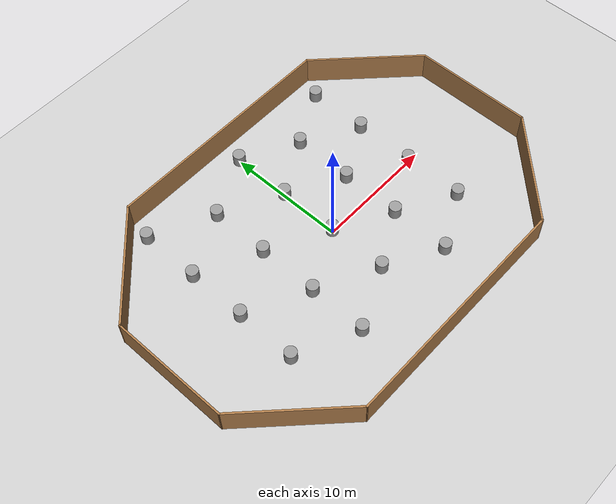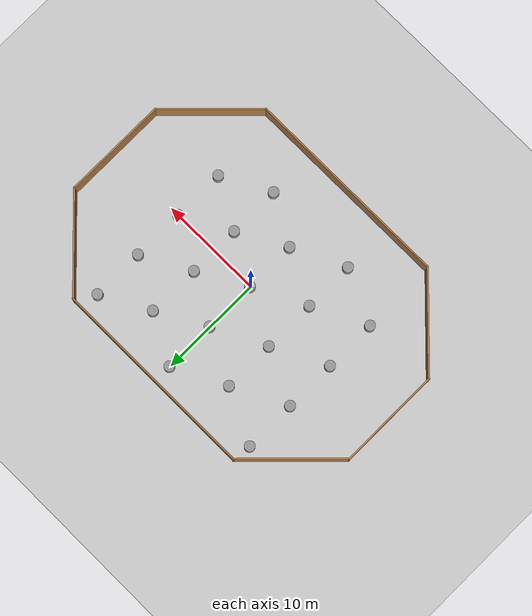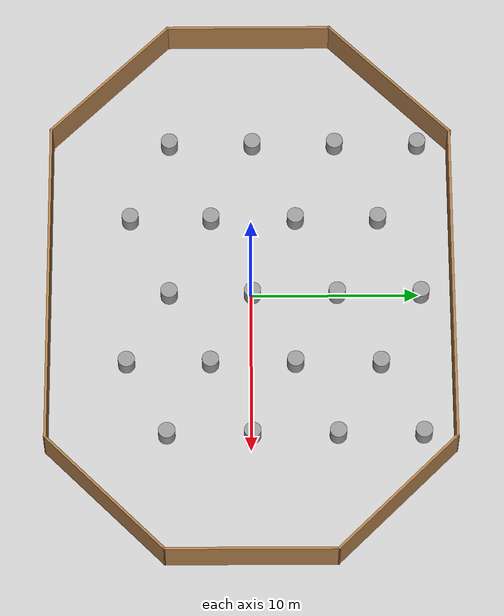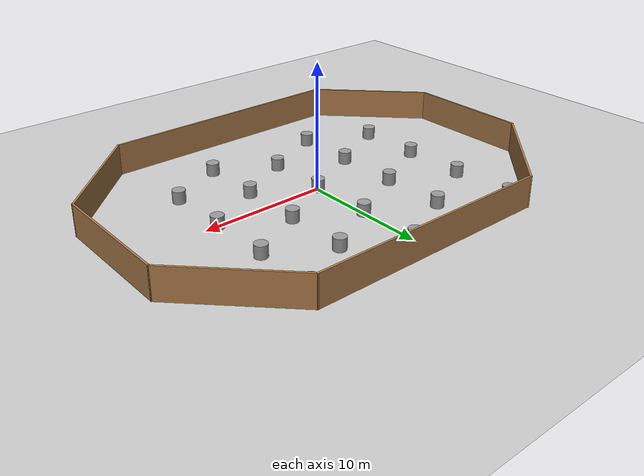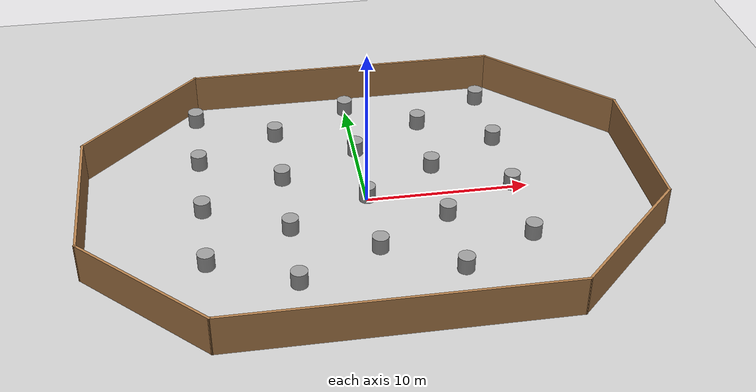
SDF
<sdf version="1.6">
 <world name="default">
  <light name="sun" type="directional">
   <pose>0 0 10 0 -0 0</pose>
   <diffuse>0.8 0.8 0.8 1</diffuse>
   <specular>0.2 0.2 0.2 1</specular>
   <attenuation>
    <range>1000</range>
    <constant>0.9</constant>
    <linear>0.01</linear>
    <quadratic>0.001</quadratic>
   </attenuation>
   <direction>-0.5 0.1 -0.9</direction>
  </light>
  <model name="ground_plane">
   <static>1</static>
   <link name="link">
    <collision name="collision">
     <geometry><plane><normal>0 0 1</normal><size>100 100</size></plane></geometry>
     <surface>
      <contact><collide_bitmask>65535</collide_bitmask></contact>
      <friction><ode><mu>100</mu><mu2>50</mu2></ode></friction>
     </surface>
    </collision>
    <visual name="visual">
     <cast_shadows>0</cast_shadows>
     <geometry><plane><normal>0 0 1</normal><size>100 100</size></plane></geometry>
     <material>
      <script><uri>file://media/materials/scripts/gazebo.material</uri><name>Gazebo/Grey</name></script>
     </material>
    </visual>
   </link>
  </model>
  <gravity>0 0 -9.8</gravity>
  <magnetic_field>6e-06 2.3e-05 -4.2e-05</magnetic_field>
  <atmosphere type="adiabatic"/>
  <physics name="default_physics" default="0" type="ode">
   <max_step_size>0.001</max_step_size>
   <real_time_factor>1</real_time_factor>
   <real_time_update_rate>1000</real_time_update_rate>
  </physics>
  <scene><ambient>0.4 0.4 0.4 1</ambient><background>0.7 0.7 0.7 1</background><shadows>1</shadows></scene>
  <audio><device>default</device></audio>
  <spherical_coordinates>
   <surface_model>EARTH_WGS84</surface_model>
   <latitude_deg>0</latitude_deg>
   <longitude_deg>0</longitude_deg>
   <elevation>0</elevation>
   <heading_deg>0</heading_deg>
  </spherical_coordinates>
  <model name="world">
   <pose>0.051675 -0.00023 0 0 -0 0</pose>
   <link name="Wall_12">
    <collision name="Wall_12_Collision">
     <geometry><box><size>20.15 0.15 2.5</size></box></geometry>
     <pose>0 0 1.25 0 -0 0</pose>
    </collision>
    <visual name="Wall_12_Visual">
     <pose>0 0 1.25 0 -0 0</pose>
     <geometry><box><size>20.15 0.15 2.5</size></box></geometry>
     <material>
      <script><uri>file://media/materials/scripts/gazebo.material</uri><name>Gazebo/Wood</name></script>
      <ambient>1 1 1 1</ambient>
     </material>
     <meta><layer>0</layer></meta>
    </visual>
    <pose>0 -11.9784 0 0 -0 0</pose>
   </link>
   <link name="Wall_19">
    <collision name="Wall_19_Collision">
     <geometry><box><size>10 0.15 2.5</size></box></geometry>
     <pose>0 0 1.25 0 -0 0</pose>
    </collision>
    <visual name="Wall_19_Visual">
     <pose>0 0 1.25 0 -0 0</pose>
     <geometry><box><size>10 0.15 2.5</size></box></geometry>
     <material>
      <script><uri>file://media/materials/scripts/gazebo.material</uri><name>Gazebo/Wood</name></script>
      <ambient>1 1 1 1</ambient>
     </material>
     <meta><layer>0</layer></meta>
    </visual>
    <pose>13.4825 -8.49594 0 0 -0 0.785398</pose>
   </link>
   <link name="Wall_21">
    <collision name="Wall_21_Collision">
     <geometry><box><size>10.15 0.15 2.5</size></box></geometry>
     <pose>0 0 1.25 0 -0 0</pose>
    </collision>
    <visual name="Wall_21_Visual">
     <pose>0 0 1.25 0 -0 0</pose>
     <geometry><box><size>10.15 0.15 2.5</size></box></geometry>
     <material>
      <script><uri>file://media/materials/scripts/gazebo.material</uri><name>Gazebo/Wood</name></script>
      <ambient>1 1 1 1</ambient>
     </material>
     <meta><layer>0</layer></meta>
    </visual>
    <pose>16.965 -0.013444 0 0 -0 1.5708</pose>
   </link>
   <link name="Wall_26">
    <collision name="Wall_26_Collision">
     <geometry><box><size>10 0.15 2.5</size></box></geometry>
     <pose>0 0 1.25 0 -0 0</pose>
    </collision>
    <visual name="Wall_26_Visual">
     <pose>0 0 1.25 0 -0 0</pose>
     <geometry><box><size>10 0.15 2.5</size></box></geometry>
     <material>
      <script><uri>file://media/materials/scripts/gazebo.material</uri><name>Gazebo/Wood</name></script>
      <ambient>1 1 1 1</ambient>
     </material>
     <meta><layer>0</layer></meta>
    </visual>
    <pose>13.4825 8.46906 0 0 -0 2.35619</pose>
   </link>
   <link name="Wall_30">
    <collision name="Wall_30_Collision">
     <geometry><box><size>20 0.15 2.5</size></box></geometry>
     <pose>0 0 1.25 0 -0 0</pose>
    </collision>
    <visual name="Wall_30_Visual">
     <pose>0 0 1.25 0 -0 0</pose>
     <geometry><box><size>20 0.15 2.5</size></box></geometry>
     <material>
      <script><uri>file://media/materials/scripts/gazebo.material</uri><name>Gazebo/Wood</name></script>
      <ambient>1 1 1 1</ambient>
     </material>
     <meta><layer>0</layer></meta>
    </visual>
    <pose>0.075 11.9516 0 0 -0 3.14159</pose>
   </link>
   <link name="Wall_32">
    <collision name="Wall_32_Collision">
     <geometry><box><size>10 0.15 2.5</size></box></geometry>
     <pose>0 0 1.25 0 -0 0</pose>
    </collision>
    <visual name="Wall_32_Visual">
     <pose>0 0 1.25 0 -0 0</pose>
     <geometry><box><size>10 0.15 2.5</size></box></geometry>
     <material>
      <script><uri>file://media/materials/scripts/gazebo.material</uri><name>Gazebo/Wood</name></script>
      <ambient>1 1 1 1</ambient>
     </material>
     <meta><layer>0</layer></meta>
    </visual>
    <pose>-13.4825 -8.49594 0 0 -0 2.35619</pose>
   </link>
   <link name="Wall_34">
    <collision name="Wall_34_Collision">
     <geometry><box><size>10 0.15 2.5</size></box></geometry>
     <pose>0 0 1.25 0 -0 0</pose>
    </collision>
    <visual name="Wall_34_Visual">
     <pose>0 0 1.25 0 -0 0</pose>
     <geometry><box><size>10 0.15 2.5</size></box></geometry>
     <material>
      <script><uri>file://media/materials/scripts/gazebo.material</uri><name>Gazebo/Wood</name></script>
      <ambient>1 1 1 1</ambient>
     </material>
     <meta><layer>0</layer></meta>
    </visual>
    <pose>-16.965 -0.088444 0 0 -0 1.5708</pose>
   </link>
   <link name="Wall_36">
    <collision name="Wall_36_Collision">
     <geometry><box><size>10.25 0.15 2.5</size></box></geometry>
     <pose>0 0 1.25 0 -0 0</pose>
    </collision>
    <visual name="Wall_36_Visual">
     <pose>0 0 1.25 0 -0 0</pose>
     <geometry><box><size>10.25 0.15 2.5</size></box></geometry>
     <material>
      <script><uri>file://media/materials/scripts/gazebo.material</uri><name>Gazebo/Wood</name></script>
      <ambient>1 1 1 1</ambient>
     </material>
     <meta><layer>0</layer></meta>
    </visual>
    <pose>-13.394 8.40756 0 0 -0 0.785398</pose>
   </link>
   <static>1</static>
  </model>
  <model name="models">
   <link name="link_0_clone">
    <inertial>
     <mass>1</mass>
     <inertia><ixx>0.145833</ixx><ixy>0</ixy><ixz>0</ixz><iyy>0.145833</iyy><iyz>0</iyz><izz>0.125</izz></inertia>
    </inertial>
    <pose>9.32799 4.96395 0 0 -0 0</pose>
    <visual name="visual">
     <geometry><cylinder><radius>0.5</radius><length>1</length></cylinder></geometry>
     <material>
      <lighting>1</lighting>
      <script><uri>file://media/materials/scripts/gazebo.material</uri><name>Gazebo/Grey</name></script>
      <ambient>1 1 1 1</ambient>
      <shader type="vertex"><normal_map>__default__</normal_map></shader>
      <diffuse>0.7 0.7 0.7 1</diffuse>
      <specular>0.01 0.01 0.01 1</specular>
      <emissive>0 0 0 1</emissive>
     </material>
    </visual>
    <collision name="collision">
     <geometry><cylinder><radius>0.5</radius><length>1</length></cylinder></geometry>
     <surface>
      <friction>
       <ode><mu>1</mu><mu2>1</mu2><fdir1>0 0 0</fdir1><slip1>0</slip1><slip2>0</slip2></ode>
       <torsional>
        <coefficient>1</coefficient>
        <patch_radius>0</patch_radius>
        <surface_radius>0</surface_radius>
        <use_patch_radius>1</use_patch_radius>
        <ode><slip>0</slip></ode>
       </torsional>
      </friction>
      <bounce><restitution_coefficient>0</restitution_coefficient><threshold>1e+06</threshold></bounce>
      <contact>
       <collide_without_contact>0</collide_without_contact>
       <collide_without_contact_bitmask>1</collide_without_contact_bitmask>
       <collide_bitmask>1</collide_bitmask>
       <ode>
        <soft_cfm>0</soft_cfm>
        <soft_erp>0.2</soft_erp>
        <kp>1e+13</kp>
        <kd>1</kd>
        <max_vel>0.01</max_vel>
        <min_depth>0</min_depth>
       </ode>
       <bullet>
        <split_impulse>1</split_impulse>
        <split_impulse_penetration_threshold>-0.01</split_impulse_penetration_threshold>
        <soft_cfm>0</soft_cfm>
        <soft_erp>0.2</soft_erp>
        <kp>1e+13</kp>
        <kd>1</kd>
       </bullet>
      </contact>
     </surface>
    </collision>
   </link>
   <link name="link_0_clone_0">
    <inertial>
     <mass>1</mass>
     <inertia><ixx>0.145833</ixx><ixy>0</ixy><ixz>0</ixz><iyy>0.145833</iyy><iyz>0</iyz><izz>0.125</izz></inertia>
    </inertial>
    <pose>9.32799 9.97932 -0 0 -0 0</pose>
    <visual name="visual">
     <geometry><cylinder><radius>0.5</radius><length>1</length></cylinder></geometry>
     <material>
      <lighting>1</lighting>
      <script><uri>file://media/materials/scripts/gazebo.material</uri><name>Gazebo/Grey</name></script>
      <ambient>1 1 1 1</ambient>
      <shader type="vertex"><normal_map>__default__</normal_map></shader>
      <diffuse>0.7 0.7 0.7 1</diffuse>
      <specular>0.01 0.01 0.01 1</specular>
      <emissive>0 0 0 1</emissive>
     </material>
    </visual>
    <collision name="collision">
     <geometry><cylinder><radius>0.5</radius><length>1</length></cylinder></geometry>
     <surface>
      <friction>
       <ode><mu>1</mu><mu2>1</mu2><fdir1>0 0 0</fdir1><slip1>0</slip1><slip2>0</slip2></ode>
       <torsional>
        <coefficient>1</coefficient>
        <patch_radius>0</patch_radius>
        <surface_radius>0</surface_radius>
        <use_patch_radius>1</use_patch_radius>
        <ode><slip>0</slip></ode>
       </torsional>
      </friction>
      <bounce><restitution_coefficient>0</restitution_coefficient><threshold>1e+06</threshold></bounce>
      <contact>
       <collide_without_contact>0</collide_without_contact>
       <collide_without_contact_bitmask>1</collide_without_contact_bitmask>
       <collide_bitmask>1</collide_bitmask>
       <ode>
        <soft_cfm>0</soft_cfm>
        <soft_erp>0.2</soft_erp>
        <kp>1e+13</kp>
        <kd>1</kd>
        <max_vel>0.01</max_vel>
        <min_depth>0</min_depth>
       </ode>
       <bullet>
        <split_impulse>1</split_impulse>
        <split_impulse_penetration_threshold>-0.01</split_impulse_penetration_threshold>
        <soft_cfm>0</soft_cfm>
        <soft_erp>0.2</soft_erp>
        <kp>1e+13</kp>
        <kd>1</kd>
       </bullet>
      </contact>
     </surface>
    </collision>
   </link>
   <link name="link_0_clone_10">
    <inertial>
     <mass>1</mass>
     <inertia><ixx>0.145833</ixx><ixy>0</ixy><ixz>0</ixz><iyy>0.145833</iyy><iyz>0</iyz><izz>0.125</izz></inertia>
    </inertial>
    <pose>-4.63785 7.51834 -0 0 -0 0</pose>
    <visual name="visual">
     <geometry><cylinder><radius>0.5</radius><length>1</length></cylinder></geometry>
     <material>
      <lighting>1</lighting>
      <script><uri>file://media/materials/scripts/gazebo.material</uri><name>Gazebo/Grey</name></script>
      <ambient>1 1 1 1</ambient>
      <shader type="vertex"><normal_map>__default__</normal_map></shader>
      <diffuse>0.7 0.7 0.7 1</diffuse>
      <specular>0.01 0.01 0.01 1</specular>
      <emissive>0 0 0 1</emissive>
     </material>
    </visual>
    <collision name="collision">
     <geometry><cylinder><radius>0.5</radius><length>1</length></cylinder></geometry>
     <surface>
      <friction>
       <ode><mu>1</mu><mu2>1</mu2><fdir1>0 0 0</fdir1><slip1>0</slip1><slip2>0</slip2></ode>
       <torsional>
        <coefficient>1</coefficient>
        <patch_radius>0</patch_radius>
        <surface_radius>0</surface_radius>
        <use_patch_radius>1</use_patch_radius>
        <ode><slip>0</slip></ode>
       </torsional>
      </friction>
      <bounce><restitution_coefficient>0</restitution_coefficient><threshold>1e+06</threshold></bounce>
      <contact>
       <collide_without_contact>0</collide_without_contact>
       <collide_without_contact_bitmask>1</collide_without_contact_bitmask>
       <collide_bitmask>1</collide_bitmask>
       <ode>
        <soft_cfm>0</soft_cfm>
        <soft_erp>0.2</soft_erp>
        <kp>1e+13</kp>
        <kd>1</kd>
        <max_vel>0.01</max_vel>
        <min_depth>0</min_depth>
       </ode>
       <bullet>
        <split_impulse>1</split_impulse>
        <split_impulse_penetration_threshold>-0.01</split_impulse_penetration_threshold>
        <soft_cfm>0</soft_cfm>
        <soft_erp>0.2</soft_erp>
        <kp>1e+13</kp>
        <kd>1</kd>
       </bullet>
      </contact>
     </surface>
    </collision>
   </link>
   <link name="link_0_clone_11">
    <inertial>
     <mass>1</mass>
     <inertia><ixx>0.145833</ixx><ixy>0</ixy><ixz>0</ixz><iyy>0.145833</iyy><iyz>0</iyz><izz>0.125</izz></inertia>
    </inertial>
    <pose>-4.63785 2.56655 -0 0 -0 0</pose>
    <visual name="visual">
     <geometry><cylinder><radius>0.5</radius><length>1</length></cylinder></geometry>
     <material>
      <lighting>1</lighting>
      <script><uri>file://media/materials/scripts/gazebo.material</uri><name>Gazebo/Grey</name></script>
      <ambient>1 1 1 1</ambient>
      <shader type="vertex"><normal_map>__default__</normal_map></shader>
      <diffuse>0.7 0.7 0.7 1</diffuse>
      <specular>0.01 0.01 0.01 1</specular>
      <emissive>0 0 0 1</emissive>
     </material>
    </visual>
    <collision name="collision">
     <geometry><cylinder><radius>0.5</radius><length>1</length></cylinder></geometry>
     <surface>
      <friction>
       <ode><mu>1</mu><mu2>1</mu2><fdir1>0 0 0</fdir1><slip1>0</slip1><slip2>0</slip2></ode>
       <torsional>
        <coefficient>1</coefficient>
        <patch_radius>0</patch_radius>
        <surface_radius>0</surface_radius>
        <use_patch_radius>1</use_patch_radius>
        <ode><slip>0</slip></ode>
       </torsional>
      </friction>
      <bounce><restitution_coefficient>0</restitution_coefficient><threshold>1e+06</threshold></bounce>
      <contact>
       <collide_without_contact>0</collide_without_contact>
       <collide_without_contact_bitmask>1</collide_without_contact_bitmask>
       <collide_bitmask>1</collide_bitmask>
       <ode>
        <soft_cfm>0</soft_cfm>
        <soft_erp>0.2</soft_erp>
        <kp>1e+13</kp>
        <kd>1</kd>
        <max_vel>0.01</max_vel>
        <min_depth>0</min_depth>
       </ode>
       <bullet>
        <split_impulse>1</split_impulse>
        <split_impulse_penetration_threshold>-0.01</split_impulse_penetration_threshold>
        <soft_cfm>0</soft_cfm>
        <soft_erp>0.2</soft_erp>
        <kp>1e+13</kp>
        <kd>1</kd>
       </bullet>
      </contact>
     </surface>
    </collision>
   </link>
   <link name="link_0_clone_12">
    <inertial>
     <mass>1</mass>
     <inertia><ixx>0.145833</ixx><ixy>0</ixy><ixz>0</ixz><iyy>0.145833</iyy><iyz>0</iyz><izz>0.125</izz></inertia>
    </inertial>
    <pose>-4.63785 -2.50325 -0 0 -0 0</pose>
    <visual name="visual">
     <geometry><cylinder><radius>0.5</radius><length>1</length></cylinder></geometry>
     <material>
      <lighting>1</lighting>
      <script><uri>file://media/materials/scripts/gazebo.material</uri><name>Gazebo/Grey</name></script>
      <ambient>1 1 1 1</ambient>
      <shader type="vertex"><normal_map>__default__</normal_map></shader>
      <diffuse>0.7 0.7 0.7 1</diffuse>
      <specular>0.01 0.01 0.01 1</specular>
      <emissive>0 0 0 1</emissive>
     </material>
    </visual>
    <collision name="collision">
     <geometry><cylinder><radius>0.5</radius><length>1</length></cylinder></geometry>
     <surface>
      <friction>
       <ode><mu>1</mu><mu2>1</mu2><fdir1>0 0 0</fdir1><slip1>0</slip1><slip2>0</slip2></ode>
       <torsional>
        <coefficient>1</coefficient>
        <patch_radius>0</patch_radius>
        <surface_radius>0</surface_radius>
        <use_patch_radius>1</use_patch_radius>
        <ode><slip>0</slip></ode>
       </torsional>
      </friction>
      <bounce><restitution_coefficient>0</restitution_coefficient><threshold>1e+06</threshold></bounce>
      <contact>
       <collide_without_contact>0</collide_without_contact>
       <collide_without_contact_bitmask>1</collide_without_contact_bitmask>
       <collide_bitmask>1</collide_bitmask>
       <ode>
        <soft_cfm>0</soft_cfm>
        <soft_erp>0.2</soft_erp>
        <kp>1e+13</kp>
        <kd>1</kd>
        <max_vel>0.01</max_vel>
        <min_depth>0</min_depth>
       </ode>
       <bullet>
        <split_impulse>1</split_impulse>
        <split_impulse_penetration_threshold>-0.01</split_impulse_penetration_threshold>
        <soft_cfm>0</soft_cfm>
        <soft_erp>0.2</soft_erp>
        <kp>1e+13</kp>
        <kd>1</kd>
       </bullet>
      </contact>
     </surface>
    </collision>
   </link>
   <link name="link_0_clone_13">
    <inertial>
     <mass>1</mass>
     <inertia><ixx>0.145833</ixx><ixy>0</ixy><ixz>0</ixz><iyy>0.145833</iyy><iyz>0</iyz><izz>0.125</izz></inertia>
    </inertial>
    <pose>-4.63785 -7.35086 0 0 -0 0</pose>
    <visual name="visual">
     <geometry><cylinder><radius>0.5</radius><length>1</length></cylinder></geometry>
     <material>
      <lighting>1</lighting>
      <script><uri>file://media/materials/scripts/gazebo.material</uri><name>Gazebo/Grey</name></script>
      <ambient>1 1 1 1</ambient>
      <shader type="vertex"><normal_map>__default__</normal_map></shader>
      <diffuse>0.7 0.7 0.7 1</diffuse>
      <specular>0.01 0.01 0.01 1</specular>
      <emissive>0 0 0 1</emissive>
     </material>
    </visual>
    <collision name="collision">
     <geometry><cylinder><radius>0.5</radius><length>1</length></cylinder></geometry>
     <surface>
      <friction>
       <ode><mu>1</mu><mu2>1</mu2><fdir1>0 0 0</fdir1><slip1>0</slip1><slip2>0</slip2></ode>
       <torsional>
        <coefficient>1</coefficient>
        <patch_radius>0</patch_radius>
        <surface_radius>0</surface_radius>
        <use_patch_radius>1</use_patch_radius>
        <ode><slip>0</slip></ode>
       </torsional>
      </friction>
      <bounce><restitution_coefficient>0</restitution_coefficient><threshold>1e+06</threshold></bounce>
      <contact>
       <collide_without_contact>0</collide_without_contact>
       <collide_without_contact_bitmask>1</collide_without_contact_bitmask>
       <collide_bitmask>1</collide_bitmask>
       <ode>
        <soft_cfm>0</soft_cfm>
        <soft_erp>0.2</soft_erp>
        <kp>1e+13</kp>
        <kd>1</kd>
        <max_vel>0.01</max_vel>
        <min_depth>0</min_depth>
       </ode>
       <bullet>
        <split_impulse>1</split_impulse>
        <split_impulse_penetration_threshold>-0.01</split_impulse_penetration_threshold>
        <soft_cfm>0</soft_cfm>
        <soft_erp>0.2</soft_erp>
        <kp>1e+13</kp>
        <kd>1</kd>
       </bullet>
      </contact>
     </surface>
    </collision>
   </link>
   <link name="link_0_clone_14">
    <inertial>
     <mass>1</mass>
     <inertia><ixx>0.145833</ixx><ixy>0</ixy><ixz>0</ixz><iyy>0.145833</iyy><iyz>0</iyz><izz>0.125</izz></inertia>
    </inertial>
    <pose>4.77494 -7.48381 0 0 -0 0</pose>
    <visual name="visual">
     <geometry><cylinder><radius>0.5</radius><length>1</length></cylinder></geometry>
     <material>
      <lighting>1</lighting>
      <script><uri>file://media/materials/scripts/gazebo.material</uri><name>Gazebo/Grey</name></script>
      <ambient>1 1 1 1</ambient>
      <shader type="vertex"><normal_map>__default__</normal_map></shader>
      <diffuse>0.7 0.7 0.7 1</diffuse>
      <specular>0.01 0.01 0.01 1</specular>
      <emissive>0 0 0 1</emissive>
     </material>
    </visual>
    <collision name="collision">
     <geometry><cylinder><radius>0.5</radius><length>1</length></cylinder></geometry>
     <surface>
      <friction>
       <ode><mu>1</mu><mu2>1</mu2><fdir1>0 0 0</fdir1><slip1>0</slip1><slip2>0</slip2></ode>
       <torsional>
        <coefficient>1</coefficient>
        <patch_radius>0</patch_radius>
        <surface_radius>0</surface_radius>
        <use_patch_radius>1</use_patch_radius>
        <ode><slip>0</slip></ode>
       </torsional>
      </friction>
      <bounce><restitution_coefficient>0</restitution_coefficient><threshold>1e+06</threshold></bounce>
      <contact>
       <collide_without_contact>0</collide_without_contact>
       <collide_without_contact_bitmask>1</collide_without_contact_bitmask>
       <collide_bitmask>1</collide_bitmask>
       <ode>
        <soft_cfm>0</soft_cfm>
        <soft_erp>0.2</soft_erp>
        <kp>1e+13</kp>
        <kd>1</kd>
        <max_vel>0.01</max_vel>
        <min_depth>0</min_depth>
       </ode>
       <bullet>
        <split_impulse>1</split_impulse>
        <split_impulse_penetration_threshold>-0.01</split_impulse_penetration_threshold>
        <soft_cfm>0</soft_cfm>
        <soft_erp>0.2</soft_erp>
        <kp>1e+13</kp>
        <kd>1</kd>
       </bullet>
      </contact>
     </surface>
    </collision>
   </link>
   <link name="link_0_clone_15">
    <inertial>
     <mass>1</mass>
     <inertia><ixx>0.145833</ixx><ixy>0</ixy><ixz>0</ixz><iyy>0.145833</iyy><iyz>0</iyz><izz>0.125</izz></inertia>
    </inertial>
    <pose>4.77494 -2.52757 0 0 -0 0</pose>
    <visual name="visual">
     <geometry><cylinder><radius>0.5</radius><length>1</length></cylinder></geometry>
     <material>
      <lighting>1</lighting>
      <script><uri>file://media/materials/scripts/gazebo.material</uri><name>Gazebo/Grey</name></script>
      <ambient>1 1 1 1</ambient>
      <shader type="vertex"><normal_map>__default__</normal_map></shader>
      <diffuse>0.7 0.7 0.7 1</diffuse>
      <specular>0.01 0.01 0.01 1</specular>
      <emissive>0 0 0 1</emissive>
     </material>
    </visual>
    <collision name="collision">
     <geometry><cylinder><radius>0.5</radius><length>1</length></cylinder></geometry>
     <surface>
      <friction>
       <ode><mu>1</mu><mu2>1</mu2><fdir1>0 0 0</fdir1><slip1>0</slip1><slip2>0</slip2></ode>
       <torsional>
        <coefficient>1</coefficient>
        <patch_radius>0</patch_radius>
        <surface_radius>0</surface_radius>
        <use_patch_radius>1</use_patch_radius>
        <ode><slip>0</slip></ode>
       </torsional>
      </friction>
      <bounce><restitution_coefficient>0</restitution_coefficient><threshold>1e+06</threshold></bounce>
      <contact>
       <collide_without_contact>0</collide_without_contact>
       <collide_without_contact_bitmask>1</collide_without_contact_bitmask>
       <collide_bitmask>1</collide_bitmask>
       <ode>
        <soft_cfm>0</soft_cfm>
        <soft_erp>0.2</soft_erp>
        <kp>1e+13</kp>
        <kd>1</kd>
        <max_vel>0.01</max_vel>
        <min_depth>0</min_depth>
       </ode>
       <bullet>
        <split_impulse>1</split_impulse>
        <split_impulse_penetration_threshold>-0.01</split_impulse_penetration_threshold>
        <soft_cfm>0</soft_cfm>
        <soft_erp>0.2</soft_erp>
        <kp>1e+13</kp>
        <kd>1</kd>
       </bullet>
      </contact>
     </surface>
    </collision>
   </link>
   <link name="link_0_clone_16">
    <inertial>
     <mass>1</mass>
     <inertia><ixx>0.145833</ixx><ixy>0</ixy><ixz>0</ixz><iyy>0.145833</iyy><iyz>0</iyz><izz>0.125</izz></inertia>
    </inertial>
    <pose>4.77494 2.50473 0 0 -0 0</pose>
    <visual name="visual">
     <geometry><cylinder><radius>0.5</radius><length>1</length></cylinder></geometry>
     <material>
      <lighting>1</lighting>
      <script><uri>file://media/materials/scripts/gazebo.material</uri><name>Gazebo/Grey</name></script>
      <ambient>1 1 1 1</ambient>
      <shader type="vertex"><normal_map>__default__</normal_map></shader>
      <diffuse>0.7 0.7 0.7 1</diffuse>
      <specular>0.01 0.01 0.01 1</specular>
      <emissive>0 0 0 1</emissive>
     </material>
    </visual>
    <collision name="collision">
     <geometry><cylinder><radius>0.5</radius><length>1</length></cylinder></geometry>
     <surface>
      <friction>
       <ode><mu>1</mu><mu2>1</mu2><fdir1>0 0 0</fdir1><slip1>0</slip1><slip2>0</slip2></ode>
       <torsional>
        <coefficient>1</coefficient>
        <patch_radius>0</patch_radius>
        <surface_radius>0</surface_radius>
        <use_patch_radius>1</use_patch_radius>
        <ode><slip>0</slip></ode>
       </torsional>
      </friction>
      <bounce><restitution_coefficient>0</restitution_coefficient><threshold>1e+06</threshold></bounce>
      <contact>
       <collide_without_contact>0</collide_without_contact>
       <collide_without_contact_bitmask>1</collide_without_contact_bitmask>
       <collide_bitmask>1</collide_bitmask>
       <ode>
        <soft_cfm>0</soft_cfm>
        <soft_erp>0.2</soft_erp>
        <kp>1e+13</kp>
        <kd>1</kd>
        <max_vel>0.01</max_vel>
        <min_depth>0</min_depth>
       </ode>
       <bullet>
        <split_impulse>1</split_impulse>
        <split_impulse_penetration_threshold>-0.01</split_impulse_penetration_threshold>
        <soft_cfm>0</soft_cfm>
        <soft_erp>0.2</soft_erp>
        <kp>1e+13</kp>
        <kd>1</kd>
       </bullet>
      </contact>
     </surface>
    </collision>
   </link>
   <link name="link_0_clone_17">
    <inertial>
     <mass>1</mass>
     <inertia><ixx>0.145833</ixx><ixy>0</ixy><ixz>0</ixz><iyy>0.145833</iyy><iyz>0</iyz><izz>0.125</izz></inertia>
    </inertial>
    <pose>4.82971 7.55409 -0 0 -0 0</pose>
    <visual name="visual">
     <geometry><cylinder><radius>0.5</radius><length>1</length></cylinder></geometry>
     <material>
      <lighting>1</lighting>
      <script><uri>file://media/materials/scripts/gazebo.material</uri><name>Gazebo/Grey</name></script>
      <ambient>1 1 1 1</ambient>
      <shader type="vertex"><normal_map>__default__</normal_map></shader>
      <diffuse>0.7 0.7 0.7 1</diffuse>
      <specular>0.01 0.01 0.01 1</specular>
      <emissive>0 0 0 1</emissive>
     </material>
    </visual>
    <collision name="collision">
     <geometry><cylinder><radius>0.5</radius><length>1</length></cylinder></geometry>
     <surface>
      <friction>
       <ode><mu>1</mu><mu2>1</mu2><fdir1>0 0 0</fdir1><slip1>0</slip1><slip2>0</slip2></ode>
       <torsional>
        <coefficient>1</coefficient>
        <patch_radius>0</patch_radius>
        <surface_radius>0</surface_radius>
        <use_patch_radius>1</use_patch_radius>
        <ode><slip>0</slip></ode>
       </torsional>
      </friction>
      <bounce><restitution_coefficient>0</restitution_coefficient><threshold>1e+06</threshold></bounce>
      <contact>
       <collide_without_contact>0</collide_without_contact>
       <collide_without_contact_bitmask>1</collide_without_contact_bitmask>
       <collide_bitmask>1</collide_bitmask>
       <ode>
        <soft_cfm>0</soft_cfm>
        <soft_erp>0.2</soft_erp>
        <kp>1e+13</kp>
        <kd>1</kd>
        <max_vel>0.01</max_vel>
        <min_depth>0</min_depth>
       </ode>
       <bullet>
        <split_impulse>1</split_impulse>
        <split_impulse_penetration_threshold>-0.01</split_impulse_penetration_threshold>
        <soft_cfm>0</soft_cfm>
        <soft_erp>0.2</soft_erp>
        <kp>1e+13</kp>
        <kd>1</kd>
       </bullet>
      </contact>
     </surface>
    </collision>
   </link>
   <link name="link_0_clone_18">
    <inertial>
     <mass>1</mass>
     <inertia><ixx>0.145833</ixx><ixy>0</ixy><ixz>0</ixz><iyy>0.145833</iyy><iyz>0</iyz><izz>0.125</izz></inertia>
    </inertial>
    <pose>9.32799 -5.07871 0 0 -0 0</pose>
    <visual name="visual">
     <geometry><cylinder><radius>0.5</radius><length>1</length></cylinder></geometry>
     <material>
      <lighting>1</lighting>
      <script><uri>file://media/materials/scripts/gazebo.material</uri><name>Gazebo/Grey</name></script>
      <ambient>1 1 1 1</ambient>
      <shader type="vertex"><normal_map>__default__</normal_map></shader>
      <diffuse>0.7 0.7 0.7 1</diffuse>
      <specular>0.01 0.01 0.01 1</specular>
      <emissive>0 0 0 1</emissive>
     </material>
    </visual>
    <collision name="collision">
     <geometry><cylinder><radius>0.5</radius><length>1</length></cylinder></geometry>
     <surface>
      <friction>
       <ode><mu>1</mu><mu2>1</mu2><fdir1>0 0 0</fdir1><slip1>0</slip1><slip2>0</slip2></ode>
       <torsional>
        <coefficient>1</coefficient>
        <patch_radius>0</patch_radius>
        <surface_radius>0</surface_radius>
        <use_patch_radius>1</use_patch_radius>
        <ode><slip>0</slip></ode>
       </torsional>
      </friction>
      <bounce><restitution_coefficient>0</restitution_coefficient><threshold>1e+06</threshold></bounce>
      <contact>
       <collide_without_contact>0</collide_without_contact>
       <collide_without_contact_bitmask>1</collide_without_contact_bitmask>
       <collide_bitmask>1</collide_bitmask>
       <ode>
        <soft_cfm>0</soft_cfm>
        <soft_erp>0.2</soft_erp>
        <kp>1e+13</kp>
        <kd>1</kd>
        <max_vel>0.01</max_vel>
        <min_depth>0</min_depth>
       </ode>
       <bullet>
        <split_impulse>1</split_impulse>
        <split_impulse_penetration_threshold>-0.01</split_impulse_penetration_threshold>
        <soft_cfm>0</soft_cfm>
        <soft_erp>0.2</soft_erp>
        <kp>1e+13</kp>
        <kd>1</kd>
       </bullet>
      </contact>
     </surface>
    </collision>
   </link>
   <link name="link_0_clone_19">
    <inertial>
     <mass>1</mass>
     <inertia><ixx>0.145833</ixx><ixy>0</ixy><ixz>0</ixz><iyy>0.145833</iyy><iyz>0</iyz><izz>0.125</izz></inertia>
    </inertial>
    <pose>9.32799 -0.05478 0 0 -0 0</pose>
    <visual name="visual">
     <geometry><cylinder><radius>0.5</radius><length>1</length></cylinder></geometry>
     <material>
      <lighting>1</lighting>
      <script><uri>file://media/materials/scripts/gazebo.material</uri><name>Gazebo/Grey</name></script>
      <ambient>1 1 1 1</ambient>
      <shader type="vertex"><normal_map>__default__</normal_map></shader>
      <diffuse>0.7 0.7 0.7 1</diffuse>
      <specular>0.01 0.01 0.01 1</specular>
      <emissive>0 0 0 1</emissive>
     </material>
    </visual>
    <collision name="collision">
     <geometry><cylinder><radius>0.5</radius><length>1</length></cylinder></geometry>
     <surface>
      <friction>
       <ode><mu>1</mu><mu2>1</mu2><fdir1>0 0 0</fdir1><slip1>0</slip1><slip2>0</slip2></ode>
       <torsional>
        <coefficient>1</coefficient>
        <patch_radius>0</patch_radius>
        <surface_radius>0</surface_radius>
        <use_patch_radius>1</use_patch_radius>
        <ode><slip>0</slip></ode>
       </torsional>
      </friction>
      <bounce><restitution_coefficient>0</restitution_coefficient><threshold>1e+06</threshold></bounce>
      <contact>
       <collide_without_contact>0</collide_without_contact>
       <collide_without_contact_bitmask>1</collide_without_contact_bitmask>
       <collide_bitmask>1</collide_bitmask>
       <ode>
        <soft_cfm>0</soft_cfm>
        <soft_erp>0.2</soft_erp>
        <kp>1e+13</kp>
        <kd>1</kd>
        <max_vel>0.01</max_vel>
        <min_depth>0</min_depth>
       </ode>
       <bullet>
        <split_impulse>1</split_impulse>
        <split_impulse_penetration_threshold>-0.01</split_impulse_penetration_threshold>
        <soft_cfm>0</soft_cfm>
        <soft_erp>0.2</soft_erp>
        <kp>1e+13</kp>
        <kd>1</kd>
       </bullet>
      </contact>
     </surface>
    </collision>
   </link>
   <link name="link_0_clone_2">
    <inertial>
     <mass>1</mass>
     <inertia><ixx>0.145833</ixx><ixy>0</ixy><ixz>0</ixz><iyy>0.145833</iyy><iyz>0</iyz><izz>0.125</izz></inertia>
    </inertial>
    <pose>0.298042 -4.99064 0 0 -0 0</pose>
    <visual name="visual">
     <geometry><cylinder><radius>0.5</radius><length>1</length></cylinder></geometry>
     <material>
      <lighting>1</lighting>
      <script><uri>file://media/materials/scripts/gazebo.material</uri><name>Gazebo/Grey</name></script>
      <ambient>1 1 1 1</ambient>
      <shader type="vertex"><normal_map>__default__</normal_map></shader>
      <diffuse>0.7 0.7 0.7 1</diffuse>
      <specular>0.01 0.01 0.01 1</specular>
      <emissive>0 0 0 1</emissive>
     </material>
    </visual>
    <collision name="collision">
     <geometry><cylinder><radius>0.5</radius><length>1</length></cylinder></geometry>
     <surface>
      <friction>
       <ode><mu>1</mu><mu2>1</mu2><fdir1>0 0 0</fdir1><slip1>0</slip1><slip2>0</slip2></ode>
       <torsional>
        <coefficient>1</coefficient>
        <patch_radius>0</patch_radius>
        <surface_radius>0</surface_radius>
        <use_patch_radius>1</use_patch_radius>
        <ode><slip>0</slip></ode>
       </torsional>
      </friction>
      <bounce><restitution_coefficient>0</restitution_coefficient><threshold>1e+06</threshold></bounce>
      <contact>
       <collide_without_contact>0</collide_without_contact>
       <collide_without_contact_bitmask>1</collide_without_contact_bitmask>
       <collide_bitmask>1</collide_bitmask>
       <ode>
        <soft_cfm>0</soft_cfm>
        <soft_erp>0.2</soft_erp>
        <kp>1e+13</kp>
        <kd>1</kd>
        <max_vel>0.01</max_vel>
        <min_depth>0</min_depth>
       </ode>
       <bullet>
        <split_impulse>1</split_impulse>
        <split_impulse_penetration_threshold>-0.01</split_impulse_penetration_threshold>
        <soft_cfm>0</soft_cfm>
        <soft_erp>0.2</soft_erp>
        <kp>1e+13</kp>
        <kd>1</kd>
       </bullet>
      </contact>
     </surface>
    </collision>
   </link>
   <link name="link_0_clone_3">
    <inertial>
     <mass>1</mass>
     <inertia><ixx>0.145833</ixx><ixy>0</ixy><ixz>0</ixz><iyy>0.145833</iyy><iyz>0</iyz><izz>0.125</izz></inertia>
    </inertial>
    <pose>0.298042 -0.026727 0 0 -0 0</pose>
    <visual name="visual">
     <geometry><cylinder><radius>0.5</radius><length>1</length></cylinder></geometry>
     <material>
      <lighting>1</lighting>
      <script><uri>file://media/materials/scripts/gazebo.material</uri><name>Gazebo/Grey</name></script>
      <ambient>1 1 1 1</ambient>
      <shader type="vertex"><normal_map>__default__</normal_map></shader>
      <diffuse>0.7 0.7 0.7 1</diffuse>
      <specular>0.01 0.01 0.01 1</specular>
      <emissive>0 0 0 1</emissive>
     </material>
    </visual>
    <collision name="collision">
     <geometry><cylinder><radius>0.5</radius><length>1</length></cylinder></geometry>
     <surface>
      <friction>
       <ode><mu>1</mu><mu2>1</mu2><fdir1>0 0 0</fdir1><slip1>0</slip1><slip2>0</slip2></ode>
       <torsional>
        <coefficient>1</coefficient>
        <patch_radius>0</patch_radius>
        <surface_radius>0</surface_radius>
        <use_patch_radius>1</use_patch_radius>
        <ode><slip>0</slip></ode>
       </torsional>
      </friction>
      <bounce><restitution_coefficient>0</restitution_coefficient><threshold>1e+06</threshold></bounce>
      <contact>
       <collide_without_contact>0</collide_without_contact>
       <collide_without_contact_bitmask>1</collide_without_contact_bitmask>
       <collide_bitmask>1</collide_bitmask>
       <ode>
        <soft_cfm>0</soft_cfm>
        <soft_erp>0.2</soft_erp>
        <kp>1e+13</kp>
        <kd>1</kd>
        <max_vel>0.01</max_vel>
        <min_depth>0</min_depth>
       </ode>
       <bullet>
        <split_impulse>1</split_impulse>
        <split_impulse_penetration_threshold>-0.01</split_impulse_penetration_threshold>
        <soft_cfm>0</soft_cfm>
        <soft_erp>0.2</soft_erp>
        <kp>1e+13</kp>
        <kd>1</kd>
       </bullet>
      </contact>
     </surface>
    </collision>
   </link>
   <link name="link_0_clone_4">
    <inertial>
     <mass>1</mass>
     <inertia><ixx>0.145833</ixx><ixy>0</ixy><ixz>0</ixz><iyy>0.145833</iyy><iyz>0</iyz><izz>0.125</izz></inertia>
    </inertial>
    <pose>0.298042 5.01485 -0 0 -0 0</pose>
    <visual name="visual">
     <geometry><cylinder><radius>0.5</radius><length>1</length></cylinder></geometry>
     <material>
      <lighting>1</lighting>
      <script><uri>file://media/materials/scripts/gazebo.material</uri><name>Gazebo/Grey</name></script>
      <ambient>1 1 1 1</ambient>
      <shader type="vertex"><normal_map>__default__</normal_map></shader>
      <diffuse>0.7 0.7 0.7 1</diffuse>
      <specular>0.01 0.01 0.01 1</specular>
      <emissive>0 0 0 1</emissive>
     </material>
    </visual>
    <collision name="collision">
     <geometry><cylinder><radius>0.5</radius><length>1</length></cylinder></geometry>
     <surface>
      <friction>
       <ode><mu>1</mu><mu2>1</mu2><fdir1>0 0 0</fdir1><slip1>0</slip1><slip2>0</slip2></ode>
       <torsional>
        <coefficient>1</coefficient>
        <patch_radius>0</patch_radius>
        <surface_radius>0</surface_radius>
        <use_patch_radius>1</use_patch_radius>
        <ode><slip>0</slip></ode>
       </torsional>
      </friction>
      <bounce><restitution_coefficient>0</restitution_coefficient><threshold>1e+06</threshold></bounce>
      <contact>
       <collide_without_contact>0</collide_without_contact>
       <collide_without_contact_bitmask>1</collide_without_contact_bitmask>
       <collide_bitmask>1</collide_bitmask>
       <ode>
        <soft_cfm>0</soft_cfm>
        <soft_erp>0.2</soft_erp>
        <kp>1e+13</kp>
        <kd>1</kd>
        <max_vel>0.01</max_vel>
        <min_depth>0</min_depth>
       </ode>
       <bullet>
        <split_impulse>1</split_impulse>
        <split_impulse_penetration_threshold>-0.01</split_impulse_penetration_threshold>
        <soft_cfm>0</soft_cfm>
        <soft_erp>0.2</soft_erp>
        <kp>1e+13</kp>
        <kd>1</kd>
       </bullet>
      </contact>
     </surface>
    </collision>
   </link>
   <link name="link_0_clone_5">
    <inertial>
     <mass>1</mass>
     <inertia><ixx>0.145833</ixx><ixy>0</ixy><ixz>0</ixz><iyy>0.145833</iyy><iyz>0</iyz><izz>0.125</izz></inertia>
    </inertial>
    <pose>0.298042 10.001 -0 0 -0 0</pose>
    <visual name="visual">
     <geometry><cylinder><radius>0.5</radius><length>1</length></cylinder></geometry>
     <material>
      <lighting>1</lighting>
      <script><uri>file://media/materials/scripts/gazebo.material</uri><name>Gazebo/Grey</name></script>
      <ambient>1 1 1 1</ambient>
      <shader type="vertex"><normal_map>__default__</normal_map></shader>
      <diffuse>0.7 0.7 0.7 1</diffuse>
      <specular>0.01 0.01 0.01 1</specular>
      <emissive>0 0 0 1</emissive>
     </material>
    </visual>
    <collision name="collision">
     <geometry><cylinder><radius>0.5</radius><length>1</length></cylinder></geometry>
     <surface>
      <friction>
       <ode><mu>1</mu><mu2>1</mu2><fdir1>0 0 0</fdir1><slip1>0</slip1><slip2>0</slip2></ode>
       <torsional>
        <coefficient>1</coefficient>
        <patch_radius>0</patch_radius>
        <surface_radius>0</surface_radius>
        <use_patch_radius>1</use_patch_radius>
        <ode><slip>0</slip></ode>
       </torsional>
      </friction>
      <bounce><restitution_coefficient>0</restitution_coefficient><threshold>1e+06</threshold></bounce>
      <contact>
       <collide_without_contact>0</collide_without_contact>
       <collide_without_contact_bitmask>1</collide_without_contact_bitmask>
       <collide_bitmask>1</collide_bitmask>
       <ode>
        <soft_cfm>0</soft_cfm>
        <soft_erp>0.2</soft_erp>
        <kp>1e+13</kp>
        <kd>1</kd>
        <max_vel>0.01</max_vel>
        <min_depth>0</min_depth>
       </ode>
       <bullet>
        <split_impulse>1</split_impulse>
        <split_impulse_penetration_threshold>-0.01</split_impulse_penetration_threshold>
        <soft_cfm>0</soft_cfm>
        <soft_erp>0.2</soft_erp>
        <kp>1e+13</kp>
        <kd>1</kd>
       </bullet>
      </contact>
     </surface>
    </collision>
   </link>
   <link name="link_0_clone_6">
    <inertial>
     <mass>1</mass>
     <inertia><ixx>0.145833</ixx><ixy>0</ixy><ixz>0</ixz><iyy>0.145833</iyy><iyz>0</iyz><izz>0.125</izz></inertia>
    </inertial>
    <pose>-9.66776 -5.02294 -0 0 -0 0</pose>
    <visual name="visual">
     <geometry><cylinder><radius>0.5</radius><length>1</length></cylinder></geometry>
     <material>
      <lighting>1</lighting>
      <script><uri>file://media/materials/scripts/gazebo.material</uri><name>Gazebo/Grey</name></script>
      <ambient>1 1 1 1</ambient>
      <shader type="vertex"><normal_map>__default__</normal_map></shader>
      <diffuse>0.7 0.7 0.7 1</diffuse>
      <specular>0.01 0.01 0.01 1</specular>
      <emissive>0 0 0 1</emissive>
     </material>
    </visual>
    <collision name="collision">
     <geometry><cylinder><radius>0.5</radius><length>1</length></cylinder></geometry>
     <surface>
      <friction>
       <ode><mu>1</mu><mu2>1</mu2><fdir1>0 0 0</fdir1><slip1>0</slip1><slip2>0</slip2></ode>
       <torsional>
        <coefficient>1</coefficient>
        <patch_radius>0</patch_radius>
        <surface_radius>0</surface_radius>
        <use_patch_radius>1</use_patch_radius>
        <ode><slip>0</slip></ode>
       </torsional>
      </friction>
      <bounce><restitution_coefficient>0</restitution_coefficient><threshold>1e+06</threshold></bounce>
      <contact>
       <collide_without_contact>0</collide_without_contact>
       <collide_without_contact_bitmask>1</collide_without_contact_bitmask>
       <collide_bitmask>1</collide_bitmask>
       <ode>
        <soft_cfm>0</soft_cfm>
        <soft_erp>0.2</soft_erp>
        <kp>1e+13</kp>
        <kd>1</kd>
        <max_vel>0.01</max_vel>
        <min_depth>0</min_depth>
       </ode>
       <bullet>
        <split_impulse>1</split_impulse>
        <split_impulse_penetration_threshold>-0.01</split_impulse_penetration_threshold>
        <soft_cfm>0</soft_cfm>
        <soft_erp>0.2</soft_erp>
        <kp>1e+13</kp>
        <kd>1</kd>
       </bullet>
      </contact>
     </surface>
    </collision>
   </link>
   <link name="link_0_clone_7">
    <inertial>
     <mass>1</mass>
     <inertia><ixx>0.145833</ixx><ixy>0</ixy><ixz>0</ixz><iyy>0.145833</iyy><iyz>0</iyz><izz>0.125</izz></inertia>
    </inertial>
    <pose>-9.66776 -0.006457 -0 0 -0 0</pose>
    <visual name="visual">
     <geometry><cylinder><radius>0.5</radius><length>1</length></cylinder></geometry>
     <material>
      <lighting>1</lighting>
      <script><uri>file://media/materials/scripts/gazebo.material</uri><name>Gazebo/Grey</name></script>
      <ambient>1 1 1 1</ambient>
      <shader type="vertex"><normal_map>__default__</normal_map></shader>
      <diffuse>0.7 0.7 0.7 1</diffuse>
      <specular>0.01 0.01 0.01 1</specular>
      <emissive>0 0 0 1</emissive>
     </material>
    </visual>
    <collision name="collision">
     <geometry><cylinder><radius>0.5</radius><length>1</length></cylinder></geometry>
     <surface>
      <friction>
       <ode><mu>1</mu><mu2>1</mu2><fdir1>0 0 0</fdir1><slip1>0</slip1><slip2>0</slip2></ode>
       <torsional>
        <coefficient>1</coefficient>
        <patch_radius>0</patch_radius>
        <surface_radius>0</surface_radius>
        <use_patch_radius>1</use_patch_radius>
        <ode><slip>0</slip></ode>
       </torsional>
      </friction>
      <bounce><restitution_coefficient>0</restitution_coefficient><threshold>1e+06</threshold></bounce>
      <contact>
       <collide_without_contact>0</collide_without_contact>
       <collide_without_contact_bitmask>1</collide_without_contact_bitmask>
       <collide_bitmask>1</collide_bitmask>
       <ode>
        <soft_cfm>0</soft_cfm>
        <soft_erp>0.2</soft_erp>
        <kp>1e+13</kp>
        <kd>1</kd>
        <max_vel>0.01</max_vel>
        <min_depth>0</min_depth>
       </ode>
       <bullet>
        <split_impulse>1</split_impulse>
        <split_impulse_penetration_threshold>-0.01</split_impulse_penetration_threshold>
        <soft_cfm>0</soft_cfm>
        <soft_erp>0.2</soft_erp>
        <kp>1e+13</kp>
        <kd>1</kd>
       </bullet>
      </contact>
     </surface>
    </collision>
   </link>
   <link name="link_0_clone_8">
    <inertial>
     <mass>1</mass>
     <inertia><ixx>0.145833</ixx><ixy>0</ixy><ixz>0</ixz><iyy>0.145833</iyy><iyz>0</iyz><izz>0.125</izz></inertia>
    </inertial>
    <pose>-9.66776 4.97839 -0 0 -0 0</pose>
    <visual name="visual">
     <geometry><cylinder><radius>0.5</radius><length>1</length></cylinder></geometry>
     <material>
      <lighting>1</lighting>
      <script><uri>file://media/materials/scripts/gazebo.material</uri><name>Gazebo/Grey</name></script>
      <ambient>1 1 1 1</ambient>
      <shader type="vertex"><normal_map>__default__</normal_map></shader>
      <diffuse>0.7 0.7 0.7 1</diffuse>
      <specular>0.01 0.01 0.01 1</specular>
      <emissive>0 0 0 1</emissive>
     </material>
    </visual>
    <collision name="collision">
     <geometry><cylinder><radius>0.5</radius><length>1</length></cylinder></geometry>
     <surface>
      <friction>
       <ode><mu>1</mu><mu2>1</mu2><fdir1>0 0 0</fdir1><slip1>0</slip1><slip2>0</slip2></ode>
       <torsional>
        <coefficient>1</coefficient>
        <patch_radius>0</patch_radius>
        <surface_radius>0</surface_radius>
        <use_patch_radius>1</use_patch_radius>
        <ode><slip>0</slip></ode>
       </torsional>
      </friction>
      <bounce><restitution_coefficient>0</restitution_coefficient><threshold>1e+06</threshold></bounce>
      <contact>
       <collide_without_contact>0</collide_without_contact>
       <collide_without_contact_bitmask>1</collide_without_contact_bitmask>
       <collide_bitmask>1</collide_bitmask>
       <ode>
        <soft_cfm>0</soft_cfm>
        <soft_erp>0.2</soft_erp>
        <kp>1e+13</kp>
        <kd>1</kd>
        <max_vel>0.01</max_vel>
        <min_depth>0</min_depth>
       </ode>
       <bullet>
        <split_impulse>1</split_impulse>
        <split_impulse_penetration_threshold>-0.01</split_impulse_penetration_threshold>
        <soft_cfm>0</soft_cfm>
        <soft_erp>0.2</soft_erp>
        <kp>1e+13</kp>
        <kd>1</kd>
       </bullet>
      </contact>
     </surface>
    </collision>
   </link>
   <link name="link_0_clone_9">
    <inertial>
     <mass>1</mass>
     <inertia><ixx>0.145833</ixx><ixy>0</ixy><ixz>0</ixz><iyy>0.145833</iyy><iyz>0</iyz><izz>0.125</izz></inertia>
    </inertial>
    <pose>-9.66776 9.98469 -0 0 -0 0</pose>
    <visual name="visual">
     <geometry><cylinder><radius>0.5</radius><length>1</length></cylinder></geometry>
     <material>
      <lighting>1</lighting>
      <script><uri>file://media/materials/scripts/gazebo.material</uri><name>Gazebo/Grey</name></script>
      <ambient>1 1 1 1</ambient>
      <shader type="vertex"><normal_map>__default__</normal_map></shader>
      <diffuse>0.7 0.7 0.7 1</diffuse>
      <specular>0.01 0.01 0.01 1</specular>
      <emissive>0 0 0 1</emissive>
     </material>
    </visual>
    <collision name="collision">
     <geometry><cylinder><radius>0.5</radius><length>1</length></cylinder></geometry>
     <surface>
      <friction>
       <ode><mu>1</mu><mu2>1</mu2><fdir1>0 0 0</fdir1><slip1>0</slip1><slip2>0</slip2></ode>
       <torsional>
        <coefficient>1</coefficient>
        <patch_radius>0</patch_radius>
        <surface_radius>0</surface_radius>
        <use_patch_radius>1</use_patch_radius>
        <ode><slip>0</slip></ode>
       </torsional>
      </friction>
      <bounce><restitution_coefficient>0</restitution_coefficient><threshold>1e+06</threshold></bounce>
      <contact>
       <collide_without_contact>0</collide_without_contact>
       <collide_without_contact_bitmask>1</collide_without_contact_bitmask>
       <collide_bitmask>1</collide_bitmask>
       <ode>
        <soft_cfm>0</soft_cfm>
        <soft_erp>0.2</soft_erp>
        <kp>1e+13</kp>
        <kd>1</kd>
        <max_vel>0.01</max_vel>
        <min_depth>0</min_depth>
       </ode>
       <bullet>
        <split_impulse>1</split_impulse>
        <split_impulse_penetration_threshold>-0.01</split_impulse_penetration_threshold>
        <soft_cfm>0</soft_cfm>
        <soft_erp>0.2</soft_erp>
        <kp>1e+13</kp>
        <kd>1</kd>
       </bullet>
      </contact>
     </surface>
    </collision>
   </link>
   <static>0</static>
   <pose>-0.2727 0.122036 0.5 0 -0 0</pose>
  </model>
 </world>
</sdf>
